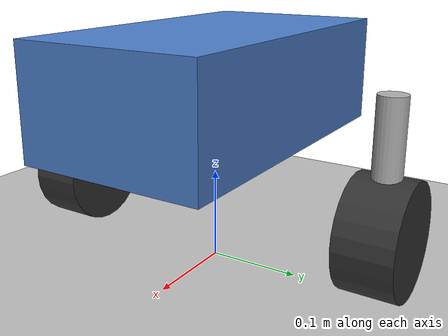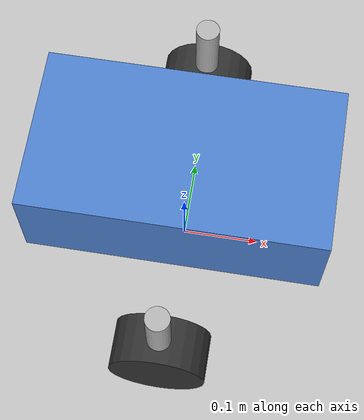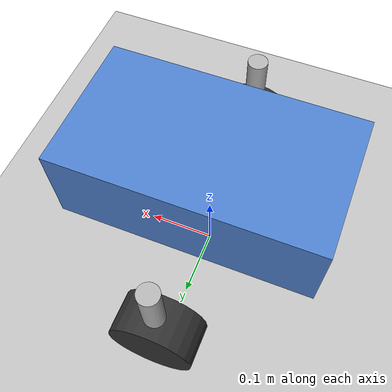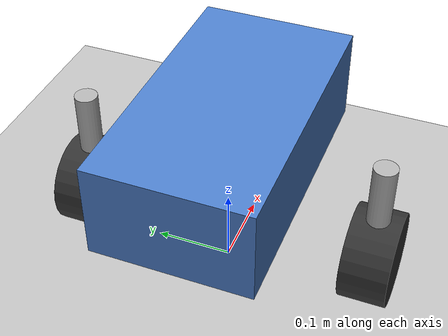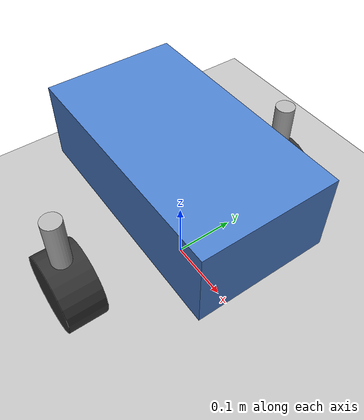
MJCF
<mujoco model="wheel_leg">
  <compiler angle="radian" autolimits="true"/>

  <option gravity="0 0 -9.81" timestep="0.002"/>

  <default>
    <joint damping="0.1"/>
    <geom contype="1" conaffinity="1" friction="0.8 0.02 0.01"/>
  </default>

  <asset>
    <texture name="grid" type="2d" builtin="checker" width="512" height="512"
             rgb1="0.85 0.85 0.85" rgb2="0.65 0.65 0.65"/>
    <material name="grid"      texture="grid" texrepeat="4 4" reflectance="0.1"/>
    <material name="body_mat"  rgba="0.3 0.5 0.8 1"/>
    <material name="leg_mat"   rgba="0.7 0.7 0.7 1"/>
    <material name="wheel_mat" rgba="0.2 0.2 0.2 1"/>
  </asset>

  <worldbody>
    <light pos="0 0 3" dir="0 0 -1" diffuse="0.8 0.8 0.8"/>
    <geom name="floor" type="plane" size="5 5 0.05" material="grid"
          friction="1.0 0.1 0.05" contype="1" conaffinity="1"/>

    <!--
      Trunk freejoint origin = hip joint axis centre.
      MATLAB l_c = -0.01066729 m → body COM is below the hip axis.
      Inertia values (m_b, I_b, I_z) from LQR.m.
    -->
    <body name="trunk" pos="0 0 0.21">
      <freejoint name="root"/>
      <inertial pos="0 0 -0.01066729" mass="12.634"
                diaginertia="0.40 0.30949668 0.62018662"/>
      <geom name="trunk_geom" type="box" size="0.18 0.10 0.06"
            pos="0 0 -0.01066729" material="body_mat" mass="0"/>

      <!-- ── Left leg assembly (y = +0.19242 m) ─────────────────────── -->
      <body name="leg_L" pos="0 0.19242 0">
        <!-- Hip joint: revolute about y-axis -->
        <joint name="hip_L" type="hinge" axis="0 1 0"
               range="-1.4 1.4" damping="0.5"/>
        <!-- Leg pole: 0.14 m fixed + 0.04 m prismatic range.
             COM at l_bl = 0.07199846 m below hip (MATLAB L=0.15 row).
             m_l, I_ll from LQR.m. -->
        <inertial pos="0 0 -0.07199846" mass="2.47507"
                  diaginertia="0.05570304 0.05570304 0.001"/>
        <geom name="pole_L" type="cylinder" size="0.015 0.07"
              pos="0 0 -0.07" material="leg_mat" mass="0"/>

        <!-- Prismatic extension (0 to 0.04 m along -z); leg PD locks it at ~0.01 -->
        <body name="ext_L" pos="0 0 -0.14">
          <joint name="leg_L" type="slide" axis="0 0 -1"
                 range="0 0.04" damping="5.0"/>
          <inertial pos="0 0 0" mass="0.05"
                    diaginertia="1e-5 1e-5 1e-5"/>
          <geom name="ext_geom_L" type="cylinder" size="0.012 0.020"
                pos="0 0 0" material="leg_mat" mass="0"/>

          <!-- Drive wheel: r = 0.06 m, m = 0.615 kg (MATLAB) -->
          <body name="wheel_L" pos="0 0 0">
            <joint name="wheel_L" type="hinge" axis="0 1 0" damping="0.05"/>
            <inertial pos="0 0 0" mass="0.615"
                      diaginertia="5.5e-4 1.07e-3 5.5e-4"/>
            <geom name="wheel_geom_L" type="cylinder" size="0.06 0.03"
                  pos="0 0 0" euler="1.5708 0 0"
                  friction="1.5 0.05 0.01" material="wheel_mat" mass="0"/>
          </body>
        </body>
      </body>

      <!-- ── Right leg assembly (y = -0.19242 m) ────────────────────── -->
      <body name="leg_R" pos="0 -0.19242 0">
        <joint name="hip_R" type="hinge" axis="0 1 0"
               range="-1.4 1.4" damping="0.5"/>
        <inertial pos="0 0 -0.07199846" mass="2.47507"
                  diaginertia="0.05570304 0.05570304 0.001"/>
        <geom name="pole_R" type="cylinder" size="0.015 0.07"
              pos="0 0 -0.07" material="leg_mat" mass="0"/>

        <body name="ext_R" pos="0 0 -0.14">
          <joint name="leg_R" type="slide" axis="0 0 -1"
                 range="0 0.04" damping="5.0"/>
          <inertial pos="0 0 0" mass="0.05"
                    diaginertia="1e-5 1e-5 1e-5"/>
          <geom name="ext_geom_R" type="cylinder" size="0.012 0.020"
                pos="0 0 0" material="leg_mat" mass="0"/>

          <body name="wheel_R" pos="0 0 0">
            <joint name="wheel_R" type="hinge" axis="0 1 0" damping="0.05"/>
            <inertial pos="0 0 0" mass="0.615"
                      diaginertia="5.5e-4 1.07e-3 5.5e-4"/>
            <geom name="wheel_geom_R" type="cylinder" size="0.06 0.03"
                  pos="0 0 0" euler="1.5708 0 0"
                  friction="1.5 0.05 0.01" material="wheel_mat" mass="0"/>
          </body>
        </body>
      </body>

    </body><!-- trunk -->
  </worldbody>

  <!-- ctrl order: [hip_L, hip_R, leg_L, leg_R, wheel_L, wheel_R] -->
  <actuator>
    <motor name="hip_L"   joint="hip_L"   gear="1" forcerange="-15 15"/>
    <motor name="hip_R"   joint="hip_R"   gear="1" forcerange="-15 15"/>
    <motor name="leg_L"   joint="leg_L"   gear="1" forcerange="-200 200"/>
    <motor name="leg_R"   joint="leg_R"   gear="1" forcerange="-200 200"/>
    <motor name="wheel_L" joint="wheel_L" gear="1" forcerange="-30 30"/>
    <motor name="wheel_R" joint="wheel_R" gear="1" forcerange="-30 30"/>
  </actuator>

</mujoco>
